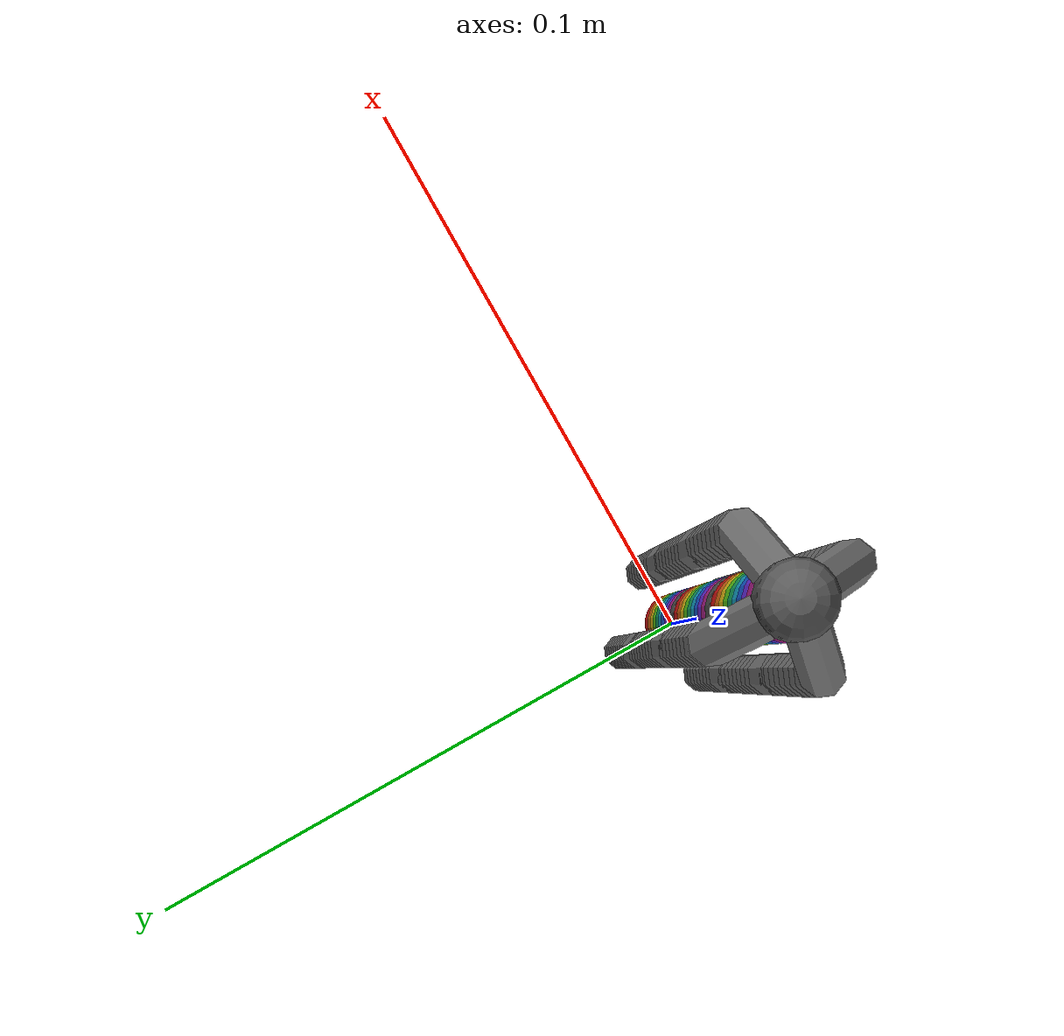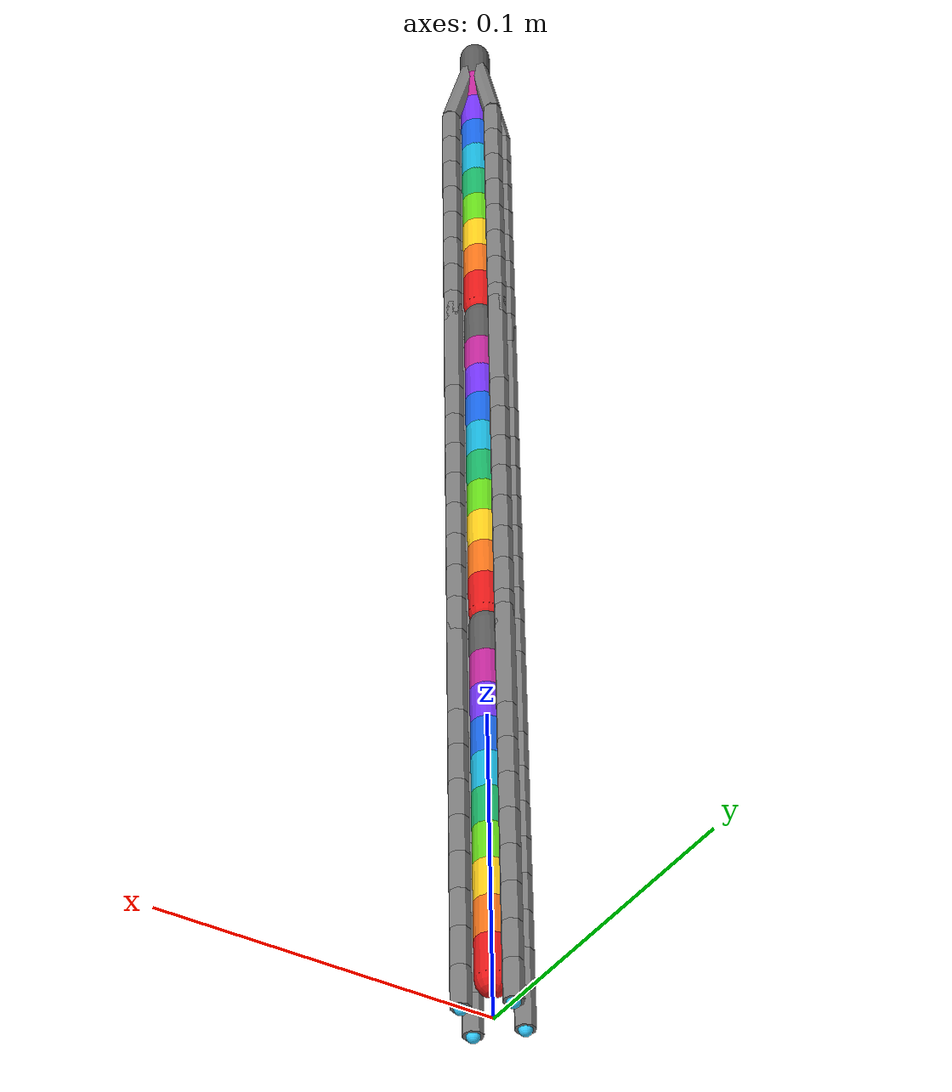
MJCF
<?xml version="1.0"?>
<mujoco model="continuum_sers_clean">

  <compiler angle="degree" coordinate="local"/>
  <option integrator="Euler" timestep="0.001"/>

  <default>
    <joint limited="true" range="-4 4" damping="0.05" stiffness="0" armature="0.0001"/>
    <geom type="capsule" size="0.005" density="1000" friction="0.8 0.1 0.01" rgba="0.8 0.8 0.8 1"/>
    <site size="0.002" rgba="0.2 0.8 1 1"/>
    <tendon stiffness="0" damping="0" frictionloss="0.05"/>
    <position kp="5000" ctrlrange="-0.05 0.05"/>
  </default>

  <!-- segment spacing d -->
  <!-- d = 0.012 m per vertebra interval; edit as needed -->

  <worldbody>
    <body name="base" pos="0 0 0">

      <!-- ================= SEGMENT 1 ================= -->
      <body name="seg1_base" pos="0 0 0.000">
        <!-- Base anchor sites for four quadrants -->
        <site name="seg1_base_N" pos="0 0.010 0"/>
        <site name="seg1_base_E" pos="0.010 0 0"/>
        <site name="seg1_base_S" pos="0 -0.010 0"/>
        <site name="seg1_base_W" pos="-0.010 0 0"/>

        <!-- Vertebra chain (V1..V10); 8 hinges alternating pitch/yaw, last link fixed -->
        <body name="seg1_v1" pos="0 0 0.012">
          <geom name="seg1_v1_geom" fromto="0 0 0  0 0 0.012" rgba="0.90 0.10 0.10 1"/>
          <joint name="seg1_j1_pitch" type="hinge" axis="1 0 0"/>
          <site name="seg1_h1_N" pos="0 0.010 0.000"/>
          <site name="seg1_h1_E" pos="0.010 0 0.000"/>
          <site name="seg1_h1_S" pos="0 -0.010 0.000"/>
          <site name="seg1_h1_W" pos="-0.010 0 0.000"/>

          <body name="seg1_v2" pos="0 0 0.012">
            <geom name="seg1_v2_geom" fromto="0 0 0  0 0 0.012" rgba="0.95 0.45 0.10 1"/>
            <joint name="seg1_j2_yaw" type="hinge" axis="0 1 0"/>
            <site name="seg1_h2_N" pos="0 0.010 0.000"/>
            <site name="seg1_h2_E" pos="0.010 0 0.000"/>
            <site name="seg1_h2_S" pos="0 -0.010 0.000"/>
            <site name="seg1_h2_W" pos="-0.010 0 0.000"/>

            <body name="seg1_v3" pos="0 0 0.012">
              <geom name="seg1_v3_geom" fromto="0 0 0  0 0 0.012" rgba="0.98 0.80 0.10 1"/>
              <joint name="seg1_j3_pitch" type="hinge" axis="1 0 0"/>
              <site name="seg1_h3_N" pos="0 0.010 0.000"/>
              <site name="seg1_h3_E" pos="0.010 0 0.000"/>
              <site name="seg1_h3_S" pos="0 -0.010 0.000"/>
              <site name="seg1_h3_W" pos="-0.010 0 0.000"/>

              <body name="seg1_v4" pos="0 0 0.012">
                <geom name="seg1_v4_geom" fromto="0 0 0  0 0 0.012" rgba="0.40 0.85 0.10 1"/>
                <joint name="seg1_j4_yaw" type="hinge" axis="0 1 0"/>
                <site name="seg1_h4_N" pos="0 0.010 0.000"/>
                <site name="seg1_h4_E" pos="0.010 0 0.000"/>
                <site name="seg1_h4_S" pos="0 -0.010 0.000"/>
                <site name="seg1_h4_W" pos="-0.010 0 0.000"/>

                <body name="seg1_v5" pos="0 0 0.012">
                  <geom name="seg1_v5_geom" fromto="0 0 0  0 0 0.012" rgba="0.10 0.70 0.40 1"/>
                  <joint name="seg1_j5_pitch" type="hinge" axis="1 0 0"/>
                  <site name="seg1_h5_N" pos="0 0.010 0.000"/>
                  <site name="seg1_h5_E" pos="0.010 0 0.000"/>
                  <site name="seg1_h5_S" pos="0 -0.010 0.000"/>
                  <site name="seg1_h5_W" pos="-0.010 0 0.000"/>

                  <body name="seg1_v6" pos="0 0 0.012">
                    <geom name="seg1_v6_geom" fromto="0 0 0  0 0 0.012" rgba="0.10 0.70 0.85 1"/>
                    <joint name="seg1_j6_yaw" type="hinge" axis="0 1 0"/>
                    <site name="seg1_h6_N" pos="0 0.010 0.000"/>
                    <site name="seg1_h6_E" pos="0.010 0 0.000"/>
                    <site name="seg1_h6_S" pos="0 -0.010 0.000"/>
                    <site name="seg1_h6_W" pos="-0.010 0 0.000"/>

                    <body name="seg1_v7" pos="0 0 0.012">
                      <geom name="seg1_v7_geom" fromto="0 0 0  0 0 0.012" rgba="0.10 0.40 0.90 1"/>
                      <joint name="seg1_j7_pitch" type="hinge" axis="1 0 0"/>
                      <site name="seg1_h7_N" pos="0 0.010 0.000"/>
                      <site name="seg1_h7_E" pos="0.010 0 0.000"/>
                      <site name="seg1_h7_S" pos="0 -0.010 0.000"/>
                      <site name="seg1_h7_W" pos="-0.010 0 0.000"/>

                      <body name="seg1_v8" pos="0 0 0.012">
                        <geom name="seg1_v8_geom" fromto="0 0 0  0 0 0.012" rgba="0.45 0.20 0.95 1"/>
                        <joint name="seg1_j8_yaw" type="hinge" axis="0 1 0"/>
                        <site name="seg1_h8_N" pos="0 0.010 0.000"/>
                        <site name="seg1_h8_E" pos="0.010 0 0.000"/>
                        <site name="seg1_h8_S" pos="0 -0.010 0.000"/>
                        <site name="seg1_h8_W" pos="-0.010 0 0.000"/>

                        <body name="seg1_v9" pos="0 0 0.012">
                          <geom name="seg1_v9_geom" fromto="0 0 0  0 0 0.012" rgba="0.75 0.15 0.60 1"/>
                          <body name="seg1_v10" pos="0 0 0.012">
                            <geom name="seg1_v10_geom" fromto="0 0 0  0 0 0.012" rgba="0.35 0.35 0.35 1"/>
                            <site name="seg1_imu" pos="0 0 0.012"/>
                            <geom name="seg1_tip_sphere" type="sphere" size="0.0025" pos="0 0 0.012" rgba="0.9 0.2 0.2 1"/>
                            <site name="seg1_tip_N" pos="0 0.010 0.012"/>
                            <site name="seg1_tip_E" pos="0.010 0 0.012"/>
                            <site name="seg1_tip_S" pos="0 -0.010 0.012"/>
                            <site name="seg1_tip_W" pos="-0.010 0 0.012"/>

                            <!-- ================= SEGMENT 2 ================= -->
                            <body name="seg2_base" pos="0 0 0.005">
                              <site name="seg2_base_N" pos="0 0.010 0"/>
                              <site name="seg2_base_E" pos="0.010 0 0"/>
                              <site name="seg2_base_S" pos="0 -0.010 0"/>
                              <site name="seg2_base_W" pos="-0.010 0 0"/>

                              <body name="seg2_v1" pos="0 0 0.012">
                                <geom name="seg2_v1_geom" fromto="0 0 0  0 0 0.012" rgba="0.90 0.10 0.10 1"/>
                                <joint name="seg2_j1_pitch" type="hinge" axis="1 0 0"/>
                                <site name="seg2_h1_N" pos="0 0.010 0.000"/>
                                <site name="seg2_h1_E" pos="0.010 0 0.000"/>
                                <site name="seg2_h1_S" pos="0 -0.010 0.000"/>
                                <site name="seg2_h1_W" pos="-0.010 0 0.000"/>

                                <body name="seg2_v2" pos="0 0 0.012">
                                  <geom name="seg2_v2_geom" fromto="0 0 0  0 0 0.012" rgba="0.95 0.45 0.10 1"/>
                                  <joint name="seg2_j2_yaw" type="hinge" axis="0 1 0"/>
                                  <site name="seg2_h2_N" pos="0 0.010 0.000"/>
                                  <site name="seg2_h2_E" pos="0.010 0 0.000"/>
                                  <site name="seg2_h2_S" pos="0 -0.010 0.000"/>
                                  <site name="seg2_h2_W" pos="-0.010 0 0.000"/>

                                  <body name="seg2_v3" pos="0 0 0.012">
                                    <geom name="seg2_v3_geom" fromto="0 0 0  0 0 0.012" rgba="0.98 0.80 0.10 1"/>
                                    <joint name="seg2_j3_pitch" type="hinge" axis="1 0 0"/>
                                    <site name="seg2_h3_N" pos="0 0.010 0.000"/>
                                    <site name="seg2_h3_E" pos="0.010 0 0.000"/>
                                    <site name="seg2_h3_S" pos="0 -0.010 0.000"/>
                                    <site name="seg2_h3_W" pos="-0.010 0 0.000"/>

                                    <body name="seg2_v4" pos="0 0 0.012">
                                      <geom name="seg2_v4_geom" fromto="0 0 0  0 0 0.012" rgba="0.40 0.85 0.10 1"/>
                                      <joint name="seg2_j4_yaw" type="hinge" axis="0 1 0"/>
                                      <site name="seg2_h4_N" pos="0 0.010 0.000"/>
                                      <site name="seg2_h4_E" pos="0.010 0 0.000"/>
                                      <site name="seg2_h4_S" pos="0 -0.010 0.000"/>
                                      <site name="seg2_h4_W" pos="-0.010 0 0.000"/>

                                      <body name="seg2_v5" pos="0 0 0.012">
                                        <geom name="seg2_v5_geom" fromto="0 0 0  0 0 0.012" rgba="0.10 0.70 0.40 1"/>
                                        <joint name="seg2_j5_pitch" type="hinge" axis="1 0 0"/>
                                        <site name="seg2_h5_N" pos="0 0.010 0.000"/>
                                        <site name="seg2_h5_E" pos="0.010 0 0.000"/>
                                        <site name="seg2_h5_S" pos="0 -0.010 0.000"/>
                                        <site name="seg2_h5_W" pos="-0.010 0 0.000"/>

                                        <body name="seg2_v6" pos="0 0 0.012">
                                          <geom name="seg2_v6_geom" fromto="0 0 0  0 0 0.012" rgba="0.10 0.70 0.85 1"/>
                                          <joint name="seg2_j6_yaw" type="hinge" axis="0 1 0"/>
                                          <site name="seg2_h6_N" pos="0 0.010 0.000"/>
                                          <site name="seg2_h6_E" pos="0.010 0 0.000"/>
                                          <site name="seg2_h6_S" pos="0 -0.010 0.000"/>
                                          <site name="seg2_h6_W" pos="-0.010 0 0.000"/>

                                          <body name="seg2_v7" pos="0 0 0.012">
                                            <geom name="seg2_v7_geom" fromto="0 0 0  0 0 0.012" rgba="0.10 0.40 0.90 1"/>
                                            <joint name="seg2_j7_pitch" type="hinge" axis="1 0 0"/>
                                            <site name="seg2_h7_N" pos="0 0.010 0.000"/>
                                            <site name="seg2_h7_E" pos="0.010 0 0.000"/>
                                            <site name="seg2_h7_S" pos="0 -0.010 0.000"/>
                                            <site name="seg2_h7_W" pos="-0.010 0 0.000"/>

                                            <body name="seg2_v8" pos="0 0 0.012">
                                              <geom name="seg2_v8_geom" fromto="0 0 0  0 0 0.012" rgba="0.45 0.20 0.95 1"/>
                                              <joint name="seg2_j8_yaw" type="hinge" axis="0 1 0"/>
                                              <site name="seg2_h8_N" pos="0 0.010 0.000"/>
                                              <site name="seg2_h8_E" pos="0.010 0 0.000"/>
                                              <site name="seg2_h8_S" pos="0 -0.010 0.000"/>
                                              <site name="seg2_h8_W" pos="-0.010 0 0.000"/>

                                              <body name="seg2_v9" pos="0 0 0.012">
                                                <geom name="seg2_v9_geom" fromto="0 0 0  0 0 0.012" rgba="0.75 0.15 0.60 1"/>
                                                <body name="seg2_v10" pos="0 0 0.012">
                                                  <geom name="seg2_v10_geom" fromto="0 0 0  0 0 0.012" rgba="0.35 0.35 0.35 1"/>
                                                  <site name="seg2_imu" pos="0 0 0.012"/>
                                                  <site name="seg2_tip_N" pos="0 0.010 0.012"/>
                                                  <site name="seg2_tip_E" pos="0.010 0 0.012"/>
                                                  <site name="seg2_tip_S" pos="0 -0.010 0.012"/>
                                                  <site name="seg2_tip_W" pos="-0.010 0 0.012"/>

                                                  <!-- ================= SEGMENT 3 ================= -->
                                                  <body name="seg3_base" pos="0 0 0.005">
                                                    <site name="seg3_base_N" pos="0 0.010 0"/>
                                                    <site name="seg3_base_E" pos="0.010 0 0"/>
                                                    <site name="seg3_base_S" pos="0 -0.010 0"/>
                                                    <site name="seg3_base_W" pos="-0.010 0 0"/>

                                                    <body name="seg3_v1" pos="0 0 0.012">
                                                      <geom name="seg3_v1_geom" fromto="0 0 0  0 0 0.012" rgba="0.90 0.10 0.10 1"/>
                                                      <joint name="seg3_j1_pitch" type="hinge" axis="1 0 0"/>
                                                      <site name="seg3_h1_N" pos="0 0.010 0.000"/>
                                                      <site name="seg3_h1_E" pos="0.010 0 0.000"/>
                                                      <site name="seg3_h1_S" pos="0 -0.010 0.000"/>
                                                      <site name="seg3_h1_W" pos="-0.010 0 0.000"/>

                                                      <body name="seg3_v2" pos="0 0 0.012">
                                                        <geom name="seg3_v2_geom" fromto="0 0 0  0 0 0.012" rgba="0.95 0.45 0.10 1"/>
                                                        <joint name="seg3_j2_yaw" type="hinge" axis="0 1 0"/>
                                                        <site name="seg3_h2_N" pos="0 0.010 0.000"/>
                                                        <site name="seg3_h2_E" pos="0.010 0 0.000"/>
                                                        <site name="seg3_h2_S" pos="0 -0.010 0.000"/>
                                                        <site name="seg3_h2_W" pos="-0.010 0 0.000"/>

                                                        <body name="seg3_v3" pos="0 0 0.012">
                                                          <geom name="seg3_v3_geom" fromto="0 0 0  0 0 0.012" rgba="0.98 0.80 0.10 1"/>
                                                          <joint name="seg3_j3_pitch" type="hinge" axis="1 0 0"/>
                                                          <site name="seg3_h3_N" pos="0 0.010 0.000"/>
                                                          <site name="seg3_h3_E" pos="0.010 0 0.000"/>
                                                          <site name="seg3_h3_S" pos="0 -0.010 0.000"/>
                                                          <site name="seg3_h3_W" pos="-0.010 0 0.000"/>

                                                          <body name="seg3_v4" pos="0 0 0.012">
                                                            <geom name="seg3_v4_geom" fromto="0 0 0  0 0 0.012" rgba="0.40 0.85 0.10 1"/>
                                                            <joint name="seg3_j4_yaw" type="hinge" axis="0 1 0"/>
                                                            <site name="seg3_h4_N" pos="0 0.010 0.000"/>
                                                            <site name="seg3_h4_E" pos="0.010 0 0.000"/>
                                                            <site name="seg3_h4_S" pos="0 -0.010 0.000"/>
                                                            <site name="seg3_h4_W" pos="-0.010 0 0.000"/>

                                                            <body name="seg3_v5" pos="0 0 0.012">
                                                              <geom name="seg3_v5_geom" fromto="0 0 0  0 0 0.012" rgba="0.10 0.70 0.40 1"/>
                                                              <joint name="seg3_j5_pitch" type="hinge" axis="1 0 0"/>
                                                              <site name="seg3_h5_N" pos="0 0.010 0.000"/>
                                                              <site name="seg3_h5_E" pos="0.010 0 0.000"/>
                                                              <site name="seg3_h5_S" pos="0 -0.010 0.000"/>
                                                              <site name="seg3_h5_W" pos="-0.010 0 0.000"/>

                                                              <body name="seg3_v6" pos="0 0 0.012">
                                                                <geom name="seg3_v6_geom" fromto="0 0 0  0 0 0.012" rgba="0.10 0.70 0.85 1"/>
                                                                <joint name="seg3_j6_yaw" type="hinge" axis="0 1 0"/>
                                                                <site name="seg3_h6_N" pos="0 0.010 0.000"/>
                                                                <site name="seg3_h6_E" pos="0.010 0 0.000"/>
                                                                <site name="seg3_h6_S" pos="0 -0.010 0.000"/>
                                                                <site name="seg3_h6_W" pos="-0.010 0 0.000"/>

                                                                <body name="seg3_v7" pos="0 0 0.012">
                                                                  <geom name="seg3_v7_geom" fromto="0 0 0  0 0 0.012" rgba="0.10 0.40 0.90 1"/>
                                                                  <joint name="seg3_j7_pitch" type="hinge" axis="1 0 0"/>
                                                                  <site name="seg3_h7_N" pos="0 0.010 0.000"/>
                                                                  <site name="seg3_h7_E" pos="0.010 0 0.000"/>
                                                                  <site name="seg3_h7_S" pos="0 -0.010 0.000"/>
                                                                  <site name="seg3_h7_W" pos="-0.010 0 0.000"/>

                                                                  <body name="seg3_v8" pos="0 0 0.012">
                                                                    <geom name="seg3_v8_geom" fromto="0 0 0  0 0 0.012" rgba="0.45 0.20 0.95 1"/>
                                                                    <joint name="seg3_j8_yaw" type="hinge" axis="0 1 0"/>
                                                                    <site name="seg3_h8_N" pos="0 0.010 0.000"/>
                                                                    <site name="seg3_h8_E" pos="0.010 0 0.000"/>
                                                                    <site name="seg3_h8_S" pos="0 -0.010 0.000"/>
                                                                    <site name="seg3_h8_W" pos="-0.010 0 0.000"/>

                                                                    <body name="seg3_v9" pos="0 0 0.012">
                                                                      <geom name="seg3_v9_geom" fromto="0 0 0  0 0 0.012" rgba="0.75 0.15 0.60 1"/>
                                                                      <body name="seg3_v10" pos="0 0 0.012">
                                                                        <geom name="seg3_v10_geom" fromto="0 0 0  0 0 0.012" rgba="0.35 0.35 0.35 1"/>
                                                                        <site name="seg3_imu" pos="0 0 0.012"/>
                                                                        <site name="tip_site" pos="0 0 0.012"/>
                                                                        <geom name="tip_sphere" type="sphere" size="0.0025" pos="0 0 0.012" rgba="0.9 0.2 0.2 1"/>
                                                                      </body>
                                                                    </body>
                                                                  </body>
                                                                </body>
                                                              </body>
                                                            </body>
                                                          </body>
                                                        </body>
                                                      </body>
                                                    </body>
                                                  </body>
                                                </body>
                                              </body>
                                            </body>
                                          </body>
                                        </body>
                                      </body>
                                    </body>
                                  </body>
                                </body>
                              </body>

                            </body>
                          </body>
                        </body>

                      </body>
                    </body>
                  </body>
                </body>
              </body>
            </body>
          </body>
        </body>
      </body>
    </body>
  </worldbody>

  <!-- ================= TENDONS ================= -->
  <tendon>
    <!-- Segment 1 -->
    <spatial name="t_seg1_N"><site site="seg1_base_N"/><site site="seg1_h1_N"/><site site="seg1_h2_N"/><site site="seg1_h3_N"/><site site="seg1_h4_N"/><site site="seg1_h5_N"/><site site="seg1_h6_N"/><site site="seg1_h7_N"/><site site="seg1_h8_N"/><site site="seg1_tip_N"/></spatial>
    <spatial name="t_seg1_E"><site site="seg1_base_E"/><site site="seg1_h1_E"/><site site="seg1_h2_E"/><site site="seg1_h3_E"/><site site="seg1_h4_E"/><site site="seg1_h5_E"/><site site="seg1_h6_E"/><site site="seg1_h7_E"/><site site="seg1_h8_E"/><site site="seg1_tip_E"/></spatial>
    <spatial name="t_seg1_S"><site site="seg1_base_S"/><site site="seg1_h1_S"/><site site="seg1_h2_S"/><site site="seg1_h3_S"/><site site="seg1_h4_S"/><site site="seg1_h5_S"/><site site="seg1_h6_S"/><site site="seg1_h7_S"/><site site="seg1_h8_S"/><site site="seg1_tip_S"/></spatial>
    <spatial name="t_seg1_W"><site site="seg1_base_W"/><site site="seg1_h1_W"/><site site="seg1_h2_W"/><site site="seg1_h3_W"/><site site="seg1_h4_W"/><site site="seg1_h5_W"/><site site="seg1_h6_W"/><site site="seg1_h7_W"/><site site="seg1_h8_W"/><site site="seg1_tip_W"/></spatial>

    <!-- Segment 2 -->
    <spatial name="t_seg2_N"><site site="seg2_base_N"/><site site="seg2_h1_N"/><site site="seg2_h2_N"/><site site="seg2_h3_N"/><site site="seg2_h4_N"/><site site="seg2_h5_N"/><site site="seg2_h6_N"/><site site="seg2_h7_N"/><site site="seg2_h8_N"/><site site="seg2_tip_N"/></spatial>
    <spatial name="t_seg2_E"><site site="seg2_base_E"/><site site="seg2_h1_E"/><site site="seg2_h2_E"/><site site="seg2_h3_E"/><site site="seg2_h4_E"/><site site="seg2_h5_E"/><site site="seg2_h6_E"/><site site="seg2_h7_E"/><site site="seg2_h8_E"/><site site="seg2_tip_E"/></spatial>
    <spatial name="t_seg2_S"><site site="seg2_base_S"/><site site="seg2_h1_S"/><site site="seg2_h2_S"/><site site="seg2_h3_S"/><site site="seg2_h4_S"/><site site="seg2_h5_S"/><site site="seg2_h6_S"/><site site="seg2_h7_S"/><site site="seg2_h8_S"/><site site="seg2_tip_S"/></spatial>
    <spatial name="t_seg2_W"><site site="seg2_base_W"/><site site="seg2_h1_W"/><site site="seg2_h2_W"/><site site="seg2_h3_W"/><site site="seg2_h4_W"/><site site="seg2_h5_W"/><site site="seg2_h6_W"/><site site="seg2_h7_W"/><site site="seg2_h8_W"/><site site="seg2_tip_W"/></spatial>

    <!-- Segment 3 -->
    <spatial name="t_seg3_N"><site site="seg3_base_N"/><site site="seg3_h1_N"/><site site="seg3_h2_N"/><site site="seg3_h3_N"/><site site="seg3_h4_N"/><site site="seg3_h5_N"/><site site="seg3_h6_N"/><site site="seg3_h7_N"/><site site="seg3_h8_N"/><site site="tip_site"/></spatial>
    <spatial name="t_seg3_E"><site site="seg3_base_E"/><site site="seg3_h1_E"/><site site="seg3_h2_E"/><site site="seg3_h3_E"/><site site="seg3_h4_E"/><site site="seg3_h5_E"/><site site="seg3_h6_E"/><site site="seg3_h7_E"/><site site="seg3_h8_E"/><site site="tip_site"/></spatial>
    <spatial name="t_seg3_S"><site site="seg3_base_S"/><site site="seg3_h1_S"/><site site="seg3_h2_S"/><site site="seg3_h3_S"/><site site="seg3_h4_S"/><site site="seg3_h5_S"/><site site="seg3_h6_S"/><site site="seg3_h7_S"/><site site="seg3_h8_S"/><site site="tip_site"/></spatial>
    <spatial name="t_seg3_W"><site site="seg3_base_W"/><site site="seg3_h1_W"/><site site="seg3_h2_W"/><site site="seg3_h3_W"/><site site="seg3_h4_W"/><site site="seg3_h5_W"/><site site="seg3_h6_W"/><site site="seg3_h7_W"/><site site="seg3_h8_W"/><site site="tip_site"/></spatial>
  </tendon>

  <!-- ================= ACTUATORS ================= -->
  <actuator>
    <position name="a_seg1_N" tendon="t_seg1_N"/>
    <position name="a_seg1_E" tendon="t_seg1_E"/>
    <position name="a_seg1_S" tendon="t_seg1_S"/>
    <position name="a_seg1_W" tendon="t_seg1_W"/>
    <position name="a_seg2_N" tendon="t_seg2_N"/>
    <position name="a_seg2_E" tendon="t_seg2_E"/>
    <position name="a_seg2_S" tendon="t_seg2_S"/>
    <position name="a_seg2_W" tendon="t_seg2_W"/>
    <position name="a_seg3_N" tendon="t_seg3_N"/>
    <position name="a_seg3_E" tendon="t_seg3_E"/>
    <position name="a_seg3_S" tendon="t_seg3_S"/>
    <position name="a_seg3_W" tendon="t_seg3_W"/>
  </actuator>

  <!-- ================= SENSORS ================= -->
  <sensor>
    <framequat name="imu1_quat" objtype="site" objname="seg1_imu"/>
    <accelerometer name="imu1_acc" site="seg1_imu"/>
    <gyro name="imu1_gyro" site="seg1_imu"/>

    <framequat name="imu2_quat" objtype="site" objname="seg2_imu"/>
    <accelerometer name="imu2_acc" site="seg2_imu"/>
    <gyro name="imu2_gyro" site="seg2_imu"/>

    <framequat name="imu3_quat" objtype="site" objname="seg3_imu"/>
    <accelerometer name="imu3_acc" site="seg3_imu"/>
    <gyro name="imu3_gyro" site="seg3_imu"/>

    <touch name="tip_touch" site="tip_site"/>
  </sensor>
</mujoco>
